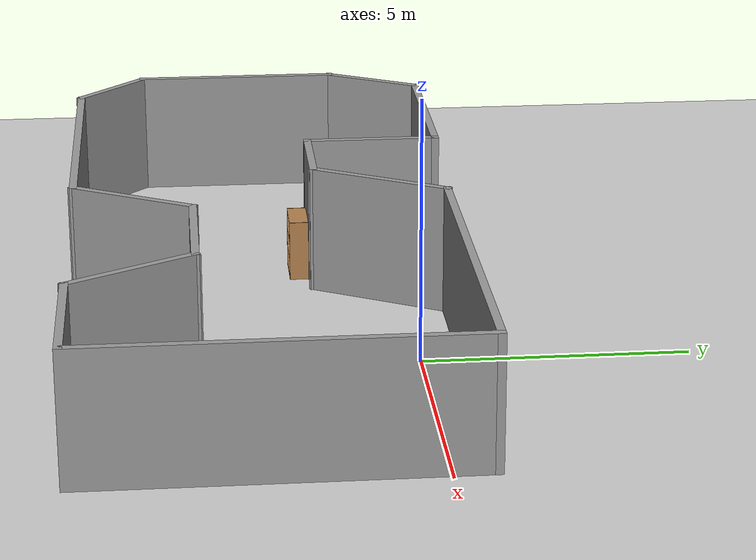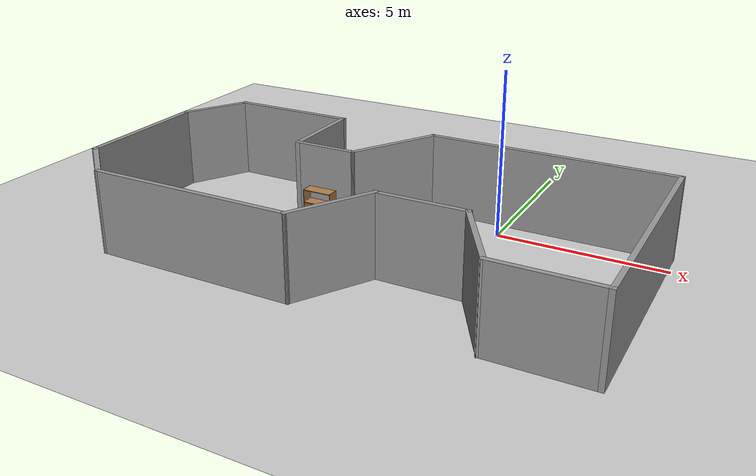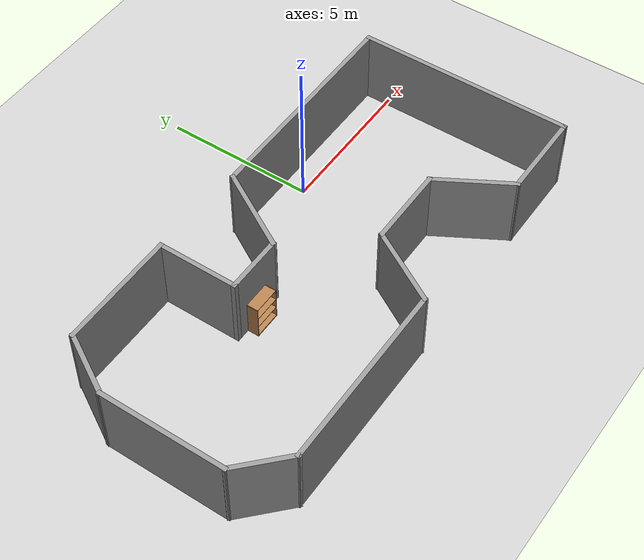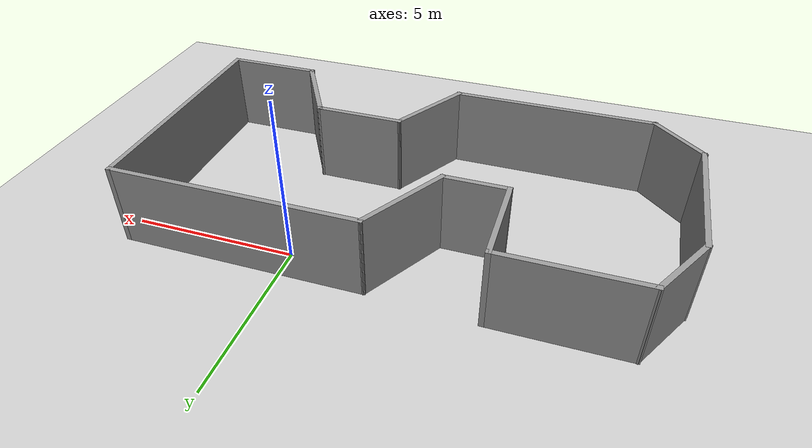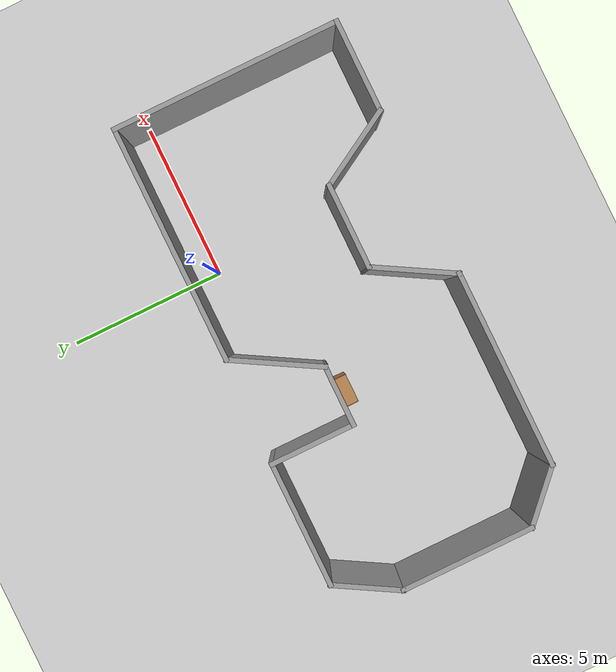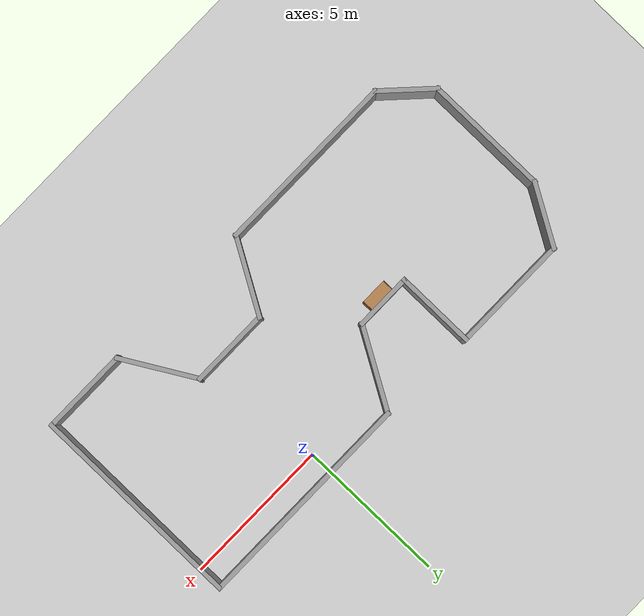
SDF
<sdf version="1.7">
 <world name="default">
  <light name="sun" type="directional">
   <pose>0 0 10 0 -0 0</pose>
   <diffuse>0.8 0.8 0.8 1</diffuse>
   <specular>0.2 0.2 0.2 1</specular>
   <attenuation>
    <range>1000</range>
    <constant>0.9</constant>
    <linear>0.01</linear>
    <quadratic>0.001</quadratic>
   </attenuation>
   <direction>-0.5 0.1 -0.9</direction>
   <spot><inner_angle>0</inner_angle><outer_angle>0</outer_angle><falloff>0</falloff></spot>
  </light>
  <model name="ground_plane">
   <static>1</static>
   <link name="link">
    <collision name="collision">
     <geometry><plane><normal>0 0 1</normal><size>100 100</size></plane></geometry>
     <surface>
      <contact><collide_bitmask>65535</collide_bitmask></contact>
      <friction><ode><mu>100</mu><mu2>50</mu2></ode></friction>
     </surface>
    </collision>
    <visual name="visual">
     <cast_shadows>0</cast_shadows>
     <geometry><plane><normal>0 0 1</normal><size>100 100</size></plane></geometry>
     <material>
      <script><uri>file://media/materials/scripts/gazebo.material</uri><name>Gazebo/Grey</name></script>
     </material>
    </visual>
   </link>
  </model>
  <gravity>0 0 -9.8</gravity>
  <magnetic_field>6e-06 2.3e-05 -4.2e-05</magnetic_field>
  <atmosphere type="adiabatic"/>
  <physics type="ode">
   <max_step_size>0.001</max_step_size>
   <real_time_factor>1</real_time_factor>
   <real_time_update_rate>1000</real_time_update_rate>
  </physics>
  <scene><ambient>0.4 0.4 0.4 1</ambient><background>0.7 0.7 0.7 1</background><shadows>1</shadows></scene>
  <audio><device>default</device></audio>
  <spherical_coordinates>
   <surface_model>EARTH_WGS84</surface_model>
   <latitude_deg>0</latitude_deg>
   <longitude_deg>0</longitude_deg>
   <elevation>0</elevation>
   <heading_deg>0</heading_deg>
  </spherical_coordinates>
  <model name="Custom_wall_v1">
   <pose>-2.92727 -2.71778 0 0 -0 0</pose>
   <link name="Wall_43">
    <collision name="Wall_43_Collision">
     <geometry><box><size>6.25 0.15 2.5</size></box></geometry>
     <pose>0 0 1.25 0 -0 0</pose>
    </collision>
    <visual name="Wall_43_Visual">
     <pose>0 0 1.25 0 -0 0</pose>
     <geometry><box><size>6.25 0.15 2.5</size></box></geometry>
     <material>
      <script><uri>file://media/materials/scripts/gazebo.material</uri><name>Gazebo/Grey</name></script>
      <ambient>1 1 1 1</ambient>
     </material>
     <meta><layer>0</layer></meta>
    </visual>
    <pose>-3.32198 -3.61412 0 0 -0 0</pose>
   </link>
   <link name="Wall_44">
    <collision name="Wall_44_Collision">
     <geometry><box><size>2.75 0.15 2.5</size></box></geometry>
     <pose>0 0 1.25 0 -0 0</pose>
    </collision>
    <visual name="Wall_44_Visual">
     <pose>0 0 1.25 0 -0 0</pose>
     <geometry><box><size>2.75 0.15 2.5</size></box></geometry>
     <material>
      <script><uri>file://media/materials/scripts/gazebo.material</uri><name>Gazebo/Grey</name></script>
      <ambient>1 1 1 1</ambient>
     </material>
     <meta><layer>0</layer></meta>
    </visual>
    <pose>0.378019 -2.48829 0 0 -0 1.0472</pose>
   </link>
   <link name="Wall_45">
    <collision name="Wall_45_Collision">
     <geometry><box><size>2.75 0.15 2.5</size></box></geometry>
     <pose>0 0 1.25 0 -0 0</pose>
    </collision>
    <visual name="Wall_45_Visual">
     <pose>0 0 1.25 0 -0 0</pose>
     <geometry><box><size>2.75 0.15 2.5</size></box></geometry>
     <material>
      <script><uri>file://media/materials/scripts/gazebo.material</uri><name>Gazebo/Grey</name></script>
      <ambient>1 1 1 1</ambient>
     </material>
     <meta><layer>0</layer></meta>
    </visual>
    <pose>2.32802 -1.36245 0 0 -0 0</pose>
   </link>
   <link name="Wall_46">
    <collision name="Wall_46_Collision">
     <geometry><box><size>2.75 0.15 2.5</size></box></geometry>
     <pose>0 0 1.25 0 -0 0</pose>
    </collision>
    <visual name="Wall_46_Visual">
     <pose>0 0 1.25 0 -0 0</pose>
     <geometry><box><size>2.75 0.15 2.5</size></box></geometry>
     <material>
      <script><uri>file://media/materials/scripts/gazebo.material</uri><name>Gazebo/Grey</name></script>
      <ambient>1 1 1 1</ambient>
     </material>
     <meta><layer>0</layer></meta>
    </visual>
    <pose>4.27802 -2.48829 0 0 -0 -1.0472</pose>
   </link>
   <link name="Wall_47">
    <collision name="Wall_47_Collision">
     <geometry><box><size>3 0.15 2.5</size></box></geometry>
     <pose>0 0 1.25 0 -0 0</pose>
    </collision>
    <visual name="Wall_47_Visual">
     <pose>0 0 1.25 0 -0 0</pose>
     <geometry><box><size>3 0.15 2.5</size></box></geometry>
     <material>
      <script><uri>file://media/materials/scripts/gazebo.material</uri><name>Gazebo/Grey</name></script>
      <ambient>1 1 1 1</ambient>
     </material>
     <meta><layer>0</layer></meta>
    </visual>
    <pose>6.35302 -3.61412 0 0 -0 0</pose>
   </link>
   <link name="Wall_48">
    <collision name="Wall_48_Collision">
     <geometry><box><size>7.25 0.15 2.5</size></box></geometry>
     <pose>0 0 1.25 0 -0 0</pose>
    </collision>
    <visual name="Wall_48_Visual">
     <pose>0 0 1.25 0 -0 0</pose>
     <geometry><box><size>7.25 0.15 2.5</size></box></geometry>
     <material>
      <script><uri>file://media/materials/scripts/gazebo.material</uri><name>Gazebo/Grey</name></script>
      <ambient>1 1 1 1</ambient>
     </material>
     <meta><layer>0</layer></meta>
    </visual>
    <pose>7.77802 -0.064121 0 0 -0 1.5708</pose>
   </link>
   <link name="Wall_49">
    <collision name="Wall_49_Collision">
     <geometry><box><size>7.5 0.15 2.5</size></box></geometry>
     <pose>0 0 1.25 0 -0 0</pose>
    </collision>
    <visual name="Wall_49_Visual">
     <pose>0 0 1.25 0 -0 0</pose>
     <geometry><box><size>7.5 0.15 2.5</size></box></geometry>
     <material>
      <script><uri>file://media/materials/scripts/gazebo.material</uri><name>Gazebo/Grey</name></script>
      <ambient>1 1 1 1</ambient>
     </material>
     <meta><layer>0</layer></meta>
    </visual>
    <pose>4.10302 3.48588 0 0 -0 3.14159</pose>
   </link>
   <link name="Wall_50">
    <collision name="Wall_50_Collision">
     <geometry><box><size>3 0.15 2.5</size></box></geometry>
     <pose>0 0 1.25 0 -0 0</pose>
    </collision>
    <visual name="Wall_50_Visual">
     <pose>0 0 1.25 0 -0 0</pose>
     <geometry><box><size>3 0.15 2.5</size></box></geometry>
     <material>
      <script><uri>file://media/materials/scripts/gazebo.material</uri><name>Gazebo/Grey</name></script>
      <ambient>1 1 1 1</ambient>
     </material>
     <meta><layer>0</layer></meta>
    </visual>
    <pose>-0.284481 2.25179 0 0 -0 -2.0944</pose>
   </link>
   <link name="Wall_51">
    <collision name="Wall_51_Collision">
     <geometry><box><size>2 0.15 2.5</size></box></geometry>
     <pose>0 0 1.25 0 -0 0</pose>
    </collision>
    <visual name="Wall_51_Visual">
     <pose>0 0 1.25 0 -0 0</pose>
     <geometry><box><size>2 0.15 2.5</size></box></geometry>
     <material>
      <script><uri>file://media/materials/scripts/gazebo.material</uri><name>Gazebo/Grey</name></script>
      <ambient>1 1 1 1</ambient>
     </material>
     <meta><layer>0</layer></meta>
    </visual>
    <pose>-1.92198 1.01771 0 0 -0 3.14159</pose>
   </link>
   <link name="Wall_52">
    <collision name="Wall_52_Collision">
     <geometry><box><size>2.75 0.15 2.5</size></box></geometry>
     <pose>0 0 1.25 0 -0 0</pose>
    </collision>
    <visual name="Wall_52_Visual">
     <pose>0 0 1.25 0 -0 0</pose>
     <geometry><box><size>2.75 0.15 2.5</size></box></geometry>
     <material>
      <script><uri>file://media/materials/scripts/gazebo.material</uri><name>Gazebo/Grey</name></script>
      <ambient>1 1 1 1</ambient>
     </material>
     <meta><layer>0</layer></meta>
    </visual>
    <pose>-2.84698 2.31771 0 0 -0 1.5708</pose>
   </link>
   <link name="Wall_53">
    <collision name="Wall_53_Collision">
     <geometry><box><size>4 0.15 2.5</size></box></geometry>
     <pose>0 0 1.25 0 -0 0</pose>
    </collision>
    <visual name="Wall_53_Visual">
     <pose>0 0 1.25 0 -0 0</pose>
     <geometry><box><size>4 0.15 2.5</size></box></geometry>
     <material>
      <script><uri>file://media/materials/scripts/gazebo.material</uri><name>Gazebo/Grey</name></script>
      <ambient>1 1 1 1</ambient>
     </material>
     <meta><layer>0</layer></meta>
    </visual>
    <pose>-4.77198 3.61771 0 0 -0 3.14159</pose>
   </link>
   <link name="Wall_54">
    <collision name="Wall_54_Collision">
     <geometry><box><size>2.25 0.15 2.5</size></box></geometry>
     <pose>0 0 1.25 0 -0 0</pose>
    </collision>
    <visual name="Wall_54_Visual">
     <pose>0 0 1.25 0 -0 0</pose>
     <geometry><box><size>2.25 0.15 2.5</size></box></geometry>
     <material>
      <script><uri>file://media/materials/scripts/gazebo.material</uri><name>Gazebo/Grey</name></script>
      <ambient>1 1 1 1</ambient>
     </material>
     <meta><layer>0</layer></meta>
    </visual>
    <pose>-7.22198 2.70838 0 0 -0 -2.0944</pose>
   </link>
   <link name="Wall_55">
    <collision name="Wall_55_Collision">
     <geometry><box><size>4.25 0.15 2.5</size></box></geometry>
     <pose>0 0 1.25 0 -0 0</pose>
    </collision>
    <visual name="Wall_55_Visual">
     <pose>0 0 1.25 0 -0 0</pose>
     <geometry><box><size>4.25 0.15 2.5</size></box></geometry>
     <material>
      <script><uri>file://media/materials/scripts/gazebo.material</uri><name>Gazebo/Grey</name></script>
      <ambient>1 1 1 1</ambient>
     </material>
     <meta><layer>0</layer></meta>
    </visual>
    <pose>-7.74698 -0.250947 0 0 -0 -1.5708</pose>
   </link>
   <link name="Wall_56">
    <collision name="Wall_56_Collision">
     <geometry><box><size>2.05133 0.15 2.5</size></box></geometry>
     <pose>0 0 1.25 0 -0 0</pose>
    </collision>
    <visual name="Wall_56_Visual">
     <pose>0 0 1.25 0 -0 0</pose>
     <geometry><box><size>2.05133 0.15 2.5</size></box></geometry>
     <material>
      <script><uri>file://media/materials/scripts/gazebo.material</uri><name>Gazebo/Grey</name></script>
      <ambient>1 1 1 1</ambient>
     </material>
     <meta><layer>0</layer></meta>
    </visual>
    <pose>-7.05948 -2.95753 0 0 -0 -0.762403</pose>
   </link>
   <static>1</static>
  </model>
  <model name="bookshelf">
   <static>1</static>
   <link name="link">
    <inertial><mass>1</mass></inertial>
    <collision name="back">
     <pose>0 0.005 0.6 0 -0 0</pose>
     <geometry><box><size>0.9 0.01 1.2</size></box></geometry>
    </collision>
    <visual name="visual1">
     <pose>0 0.005 0.6 0 -0 0</pose>
     <geometry><box><size>0.9 0.01 1.2</size></box></geometry>
     <material>
      <script><uri>file://media/materials/scripts/gazebo.material</uri><name>Gazebo/Wood</name></script>
     </material>
    </visual>
    <collision name="left_side">
     <pose>0.45 -0.195 0.6 0 -0 0</pose>
     <geometry><box><size>0.02 0.4 1.2</size></box></geometry>
    </collision>
    <visual name="visual2">
     <pose>0.45 -0.195 0.6 0 -0 0</pose>
     <geometry><box><size>0.02 0.4 1.2</size></box></geometry>
     <material>
      <script><uri>file://media/materials/scripts/gazebo.material</uri><name>Gazebo/Wood</name></script>
     </material>
    </visual>
    <collision name="right_side">
     <pose>-0.45 -0.195 0.6 0 -0 0</pose>
     <geometry><box><size>0.02 0.4 1.2</size></box></geometry>
    </collision>
    <visual name="visual3">
     <pose>-0.45 -0.195 0.6 0 -0 0</pose>
     <geometry><box><size>0.02 0.4 1.2</size></box></geometry>
     <material>
      <script><uri>file://media/materials/scripts/gazebo.material</uri><name>Gazebo/Wood</name></script>
     </material>
    </visual>
    <collision name="bottom">
     <pose>0 -0.195 0.03 0 -0 0</pose>
     <geometry><box><size>0.88 0.4 0.06</size></box></geometry>
    </collision>
    <visual name="visual4">
     <pose>0 -0.195 0.03 0 -0 0</pose>
     <geometry><box><size>0.88 0.4 0.06</size></box></geometry>
     <material>
      <script><uri>file://media/materials/scripts/gazebo.material</uri><name>Gazebo/Wood</name></script>
     </material>
    </visual>
    <collision name="top">
     <pose>0 -0.195 1.19 0 -0 0</pose>
     <geometry><box><size>0.88 0.4 0.02</size></box></geometry>
    </collision>
    <visual name="visual5">
     <pose>0 -0.195 1.19 0 -0 0</pose>
     <geometry><box><size>0.88 0.4 0.02</size></box></geometry>
     <material>
      <script><uri>file://media/materials/scripts/gazebo.material</uri><name>Gazebo/Wood</name></script>
     </material>
    </visual>
    <collision name="low_shelf">
     <pose>0 -0.195 0.43 0 -0 0</pose>
     <geometry><box><size>0.88 0.4 0.02</size></box></geometry>
    </collision>
    <visual name="visual6">
     <pose>0 -0.195 0.43 0 -0 0</pose>
     <geometry><box><size>0.88 0.4 0.02</size></box></geometry>
     <material>
      <script><uri>file://media/materials/scripts/gazebo.material</uri><name>Gazebo/Wood</name></script>
     </material>
    </visual>
    <collision name="high_shelf">
     <pose>0 -0.195 0.8 0 -0 0</pose>
     <geometry><box><size>0.88 0.4 0.02</size></box></geometry>
    </collision>
    <visual name="visual7">
     <pose>0 -0.195 0.8 0 -0 0</pose>
     <geometry><box><size>0.88 0.4 0.02</size></box></geometry>
     <material>
      <script><uri>file://media/materials/scripts/gazebo.material</uri><name>Gazebo/Wood</name></script>
     </material>
    </visual>
   </link>
   <pose>-4.91646 -1.75728 0 0 -0 0</pose>
  </model>
 </world>
</sdf>
